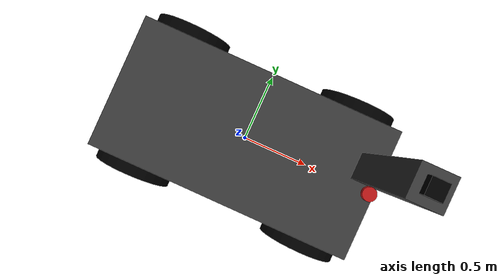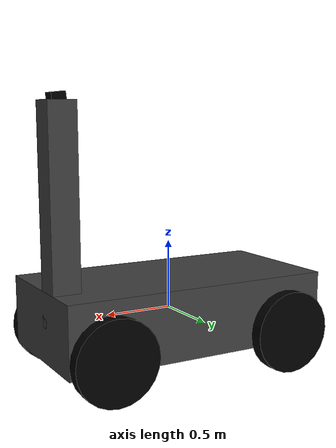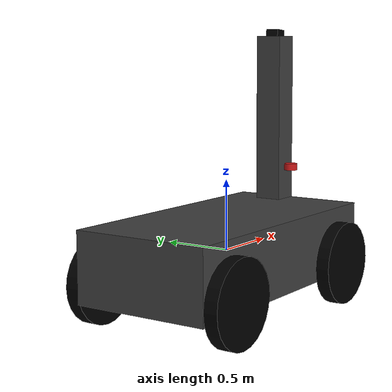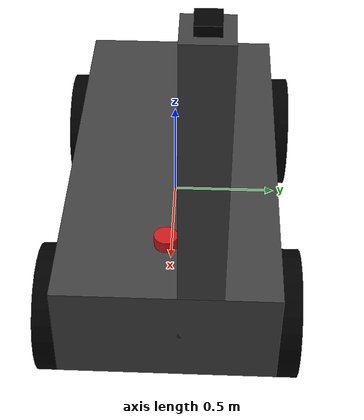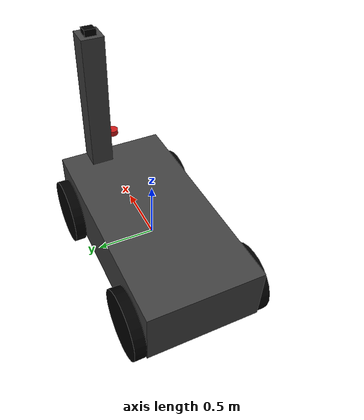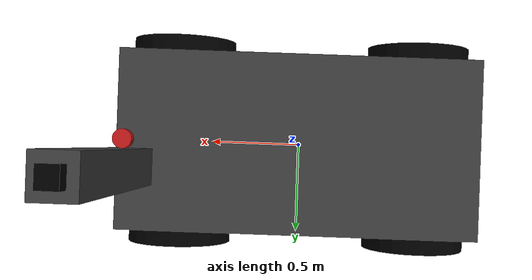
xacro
<?xml version="1.0"?>

<robot name="ackermann_steering_vehicle" xmlns:xacro="http://www.ros.org/wiki/xacro">

  <xacro:arg name="body_length" default="2.0" />
  <xacro:arg name="body_width" default="1.0" />
  <xacro:arg name="body_height" default="0.5" />
  <xacro:arg name="body_density" default="1000.0" />
  <xacro:arg name="wheel_radius" default="0.3" />
  <xacro:arg name="wheel_width" default="0.1" />
  <xacro:arg name="wheel_density" default="1000.0" />
  <xacro:arg name="max_steering_angle" default="0.6108" />
  <xacro:arg name="max_steering_angular_velocity" default="1.570796" />
  <xacro:arg name="max_steering_effort" default="1.0" />
  <xacro:arg name="max_velocity" default="1.0" />
  <xacro:arg name="max_effort" default="10.0" />
  <xacro:arg name="camera_box_size" default="0.1" />
  <xacro:arg name="camera_stick_size" default="0.2" />
  <xacro:arg name="camera_height" default="1.5" />
  <xacro:arg name="camera_pitch" default="0.1" />
  <xacro:arg name="camera_fov" default="90" />
  <xacro:arg name="camera_fps" default="30" />
  <xacro:arg name="image_width" default="640" />
  <xacro:arg name="image_height" default="480" />

  <xacro:property name="PI" value="3.14159265"/>

  <xacro:property name="body_length" value="$(arg body_length)"/>
  <xacro:property name="body_width" value="$(arg body_width)"/>
  <xacro:property name="body_height" value="$(arg body_height)"/>
  <xacro:property name="body_density" value="$(arg body_density)"/>
  <xacro:property name="wheel_radius" value="$(arg wheel_radius)"/>
  <xacro:property name="wheel_width" value="$(arg wheel_width)"/>
  <xacro:property name="wheel_density" value="$(arg wheel_density)"/>
  <xacro:property name="max_steering_angle" value="$(arg max_steering_angle)"/>
  <xacro:property name="max_steering_angular_velocity" value="$(arg max_steering_angular_velocity)"/>
  <xacro:property name="max_steering_effort" value="$(arg max_steering_effort)"/>
  <xacro:property name="max_velocity" value="$(arg max_velocity)"/>
  <xacro:property name="max_effort" value="$(arg max_effort)"/>
  <xacro:property name="camera_box_size" value="$(arg camera_box_size)"/>
  <xacro:property name="camera_stick_size" value="$(arg camera_stick_size)"/>
  <xacro:property name="camera_height" value="$(arg camera_height)"/>
  <xacro:property name="camera_pitch" value="$(arg camera_pitch)"/>
  <xacro:property name="camera_fov" value="$(arg camera_fov)"/>
  <xacro:property name="camera_fps" value="$(arg camera_fps)"/>
  <xacro:property name="image_width" value="$(arg image_width)"/>
  <xacro:property name="image_height" value="$(arg image_height)"/>

  <xacro:property name="body_mass" value="${body_density * body_length * body_height * body_width}"/>
  <xacro:property name="body_inertia_x" value="${1.0/12.0 * body_mass * (body_height*body_height + body_width*body_width)}"/>
  <xacro:property name="body_inertia_y" value="${1.0/12.0 * body_mass * (body_length*body_length + body_height*body_height)}"/>
  <xacro:property name="body_inertia_z" value="${1.0/12.0 * body_mass * (body_length*body_length + body_width*body_width)}"/>

  <xacro:property name="wheel_separation" value="${body_width + wheel_width}"/>
  <xacro:property name="wheel_offset" value="${body_length/2 - wheel_radius}"/>
  <xacro:property name="wheel_base" value="${2.0 * wheel_offset + 2.0 * wheel_radius}"/>

  <xacro:property name="wheel_mass" value="${wheel_density * PI * wheel_radius * wheel_radius * wheel_width}"/>
  <xacro:property name="wheel_inertia_x" value="${1.0/12.0 * wheel_mass * (3*wheel_radius*wheel_radius + wheel_width*wheel_width)}"/>
  <xacro:property name="wheel_inertia_y" value="${1.0/12.0 * wheel_mass * (3*wheel_radius*wheel_radius + wheel_width*wheel_width)}"/>
  <xacro:property name="wheel_inertia_z" value="${1.0/2.0 * wheel_mass * wheel_radius * wheel_radius}"/>
  <xacro:property name="max_wheel_angular_velocity" value="${max_velocity / wheel_radius}"/>

  <link name="body_link">
    <visual>
      <origin xyz="0.0 0.0 0.0" rpy="0.0 0.0 0.0"/>
      <geometry>
        <box size="${body_length} ${body_width} ${body_height}"/>
      </geometry>
      <material name="body_material">
        <color rgba="0.25 0.25 0.25 1.0"/>
      </material>
    </visual>
    <collision>
      <origin xyz="0.0 0.0 0.0" rpy="0.0 0.0 0.0"/>
      <geometry>
        <box size="${body_length} ${body_width} ${body_height}"/>
      </geometry>
    </collision>
    <inertial>
      <mass value="${body_mass}"/>
      <inertia ixx="${body_inertia_x}" ixy="0.0" ixz="0.0" iyy="${body_inertia_y}" iyz="0" izz="${body_inertia_z}"/>
      <origin xyz="0 0 0" rpy="0 0 0"/>
    </inertial>
  </link>

  <link name="front_left_wheel_link">
    <visual>
      <origin xyz="0.0 0.0 0.0" rpy="1.570795 0.0 0.0"/>
      <geometry>
        <cylinder radius="${wheel_radius}" length="${wheel_width}"/>
      </geometry>
      <material name="wheel_material">
        <color rgba="0.0 0.0 0.0 1.0"/>
      </material>
    </visual>
    <collision>
      <origin xyz="0.0 0.0 0.0" rpy="1.570795 0.0 0.0"/>
      <geometry>
        <cylinder radius="${wheel_radius}" length="${wheel_width}"/>
      </geometry>
    </collision>
    <inertial>
      <mass value="${wheel_mass}"/>
      <inertia ixx="${wheel_inertia_x}" ixy="0.0" ixz="0.0" iyy="${wheel_inertia_y}" iyz="0" izz="${wheel_inertia_z}"/>
      <origin xyz="0.0 0.0 0.0" rpy="1.570795 0.0 0.0"/>
    </inertial>
  </link>

    <link name="front_left_steering_link">
    <visual>
      <origin xyz="0.0 0.0 0.0" rpy="1.570795 0.0 0.0"/>
      <geometry>
        <cylinder length="0.001" radius="0.01"/>
      </geometry>
      <material name="wheel_material">
        <color rgba="0.0 0.0 0.0 1.0"/>
      </material>
    </visual>
    <collision>
      <origin xyz="0.0 0.0 0.0" rpy="1.570795 0.0 0.0"/>
      <geometry>
        <cylinder length="0.001" radius="0.01"/>
      </geometry>
    </collision>
    <inertial>
      <mass value="0.01"/>
      <inertia ixx="1e-4" ixy="0" ixz="0" iyy="1e-4" iyz="0" izz="1e-4"/>
      <origin xyz="0.0 0.0 0.0" rpy="1.570795 0.0 0.0"/>
    </inertial>
  </link>

  <link name="front_right_wheel_link">
    <visual>
      <origin xyz="0.0 0.0 0.0" rpy="1.570795 0.0 0.0"/>
      <geometry>
        <cylinder radius="${wheel_radius}" length="${wheel_width}"/>
      </geometry>
      <material name="wheel_material">
        <color rgba="0.0 0.0 0.0 1.0"/>
      </material>
    </visual>
    <collision>
      <origin xyz="0.0 0.0 0.0" rpy="1.570795 0.0 0.0"/>
      <geometry>
        <cylinder radius="${wheel_radius}" length="${wheel_width}"/>
      </geometry>
    </collision>
    <inertial>
      <mass value="${wheel_mass}"/>
      <inertia ixx="${wheel_inertia_x}" ixy="0.0" ixz="0.0" iyy="${wheel_inertia_y}" iyz="0" izz="${wheel_inertia_z}"/>
      <origin xyz="0.0 0.0 0.0" rpy="1.570795 0.0 0.0"/>
    </inertial>
  </link>

  <link name="front_right_steering_link">
    <visual>
      <origin xyz="0.0 0.0 0.0" rpy="1.570795 0.0 0.0"/>
      <geometry>
        <cylinder length="0.001" radius="0.01"/>
      </geometry>
      <material name="wheel_material">
        <color rgba="0.0 0.0 0.0 1.0"/>
      </material>
    </visual>
    <collision>
      <origin xyz="0.0 0.0 0.0" rpy="1.570795 0.0 0.0"/>
      <geometry>
        <cylinder length="0.001" radius="0.01"/>
      </geometry>
    </collision>
    <inertial>
      <mass value="0.01"/>
      <inertia ixx="1e-4" ixy="0" ixz="0" iyy="1e-4" iyz="0" izz="1e-4"/>
      <origin xyz="0.0 0.0 0.0" rpy="1.570795 0.0 0.0"/>
    </inertial>
  </link>

  <link name="rear_left_wheel_link">
    <visual>
      <origin xyz="0.0 0.0 0.0" rpy="1.570795 0.0 0.0"/>
      <geometry>
        <cylinder radius="${wheel_radius}" length="${wheel_width}"/>
      </geometry>
      <material name="wheel_material">
        <color rgba="0.0 0.0 0.0 1.0"/>
      </material>
    </visual>
    <collision>
      <origin xyz="0.0 0.0 0.0" rpy="1.570795 0.0 0.0"/>
      <geometry>
        <cylinder radius="${wheel_radius}" length="${wheel_width}"/>
      </geometry>
    </collision>
    <inertial>
      <mass value="${wheel_mass}"/>
      <inertia ixx="${wheel_inertia_x}" ixy="0.0" ixz="0.0" iyy="${wheel_inertia_y}" iyz="0" izz="${wheel_inertia_z}"/>
      <origin xyz="0.0 0.0 0.0" rpy="1.570795 0.0 0.0"/>
    </inertial>
  </link>

  <link name="rear_right_wheel_link">
    <visual>
      <origin xyz="0.0 0.0 0.0" rpy="1.570795 0.0 0.0"/>
      <geometry>
        <cylinder radius="${wheel_radius}" length="${wheel_width}"/>
      </geometry>
      <material name="wheel_material">
        <color rgba="0.0 0.0 0.0 1.0"/>
      </material>
    </visual>
    <collision>
      <origin xyz="0.0 0.0 0.0" rpy="1.570795 0.0 0.0"/>
      <geometry>
        <cylinder radius="${wheel_radius}" length="${wheel_width}"/>
      </geometry>
    </collision>
    <inertial>
      <mass value="${wheel_mass}"/>
      <inertia ixx="${wheel_inertia_x}" ixy="0.0" ixz="0.0" iyy="${wheel_inertia_y}" iyz="0" izz="${wheel_inertia_z}"/>
      <origin xyz="0.0 0.0 0.0" rpy="1.570795 0.0 0.0"/>
    </inertial>
  </link>

  <link name="camera_stick_link">
    <collision>
      <origin xyz="0 0 0" rpy="0 0 0"/>
      <geometry>
        <box size="${camera_stick_size} ${camera_stick_size} ${camera_height}"/>
      </geometry>
    </collision>

    <visual>
      <origin xyz="0 0 0" rpy="0 0 0"/>
      <geometry>
        <box size="${camera_stick_size} ${camera_stick_size} ${camera_height}"/>
      </geometry>

      <material name="camera_stick_material">
        <color rgba="0.25 0.25 0.25 1.0"/>
      </material>
    </visual>

    <inertial>
      <mass value="1e-5" />
      <origin xyz="0 0 0" rpy="0 0 0"/>
      <inertia ixx="1e-6" ixy="0" ixz="0" iyy="1e-6" iyz="0" izz="1e-6" />
    </inertial>
  </link>

  <link name="lidar_link">
    <visual>
      <origin xyz="0 0 0" rpy="0 0 0"/>
      <geometry>
        <cylinder radius="0.05" length="0.05"/>
      </geometry>
      <material name="lidar_material">
        <color rgba="0.8 0.1 0.1 1.0"/>
      </material>
    </visual>

    <collision>
      <origin xyz="0 0 0" rpy="0 0 0"/>
      <geometry>
        <cylinder radius="0.05" length="0.05"/>
      </geometry>
    </collision>

    <inertial>
      <mass value="0.1"/>
      <origin xyz="0 0 0" rpy="0 0 0"/>
      <inertia ixx="1e-4" ixy="0" ixz="0"
              iyy="1e-4" iyz="0"
              izz="1e-4"/>
    </inertial>
</link>

  <link name="camera_link">
    <collision>
      <origin xyz="0 0 0" rpy="0 0 0"/>
      <geometry>
        <box size="${camera_box_size} ${camera_box_size} ${camera_box_size}"/>
      </geometry>
    </collision>

    <visual>
      <origin xyz="0 0 0" rpy="0 0 0"/>
      <geometry>
        <box size="${camera_box_size} ${camera_box_size} ${camera_box_size}"/>
      </geometry>

      <material name="camera_material">
        <color rgba="0.0 0.0 0.0 1.0"/>
      </material>
    </visual>

    <inertial>
      <mass value="1e-5" />
      <origin xyz="0 0 0" rpy="0 0 0"/>
      <inertia ixx="1e-6" ixy="0" ixz="0" iyy="1e-6" iyz="0" izz="1e-6" />
    </inertial>
  </link>

  <joint name="front_left_steering_joint" type="revolute">
    <origin xyz="${wheel_offset} ${wheel_separation/2} -${wheel_radius/2}" rpy="0 0 0"/>
    <parent link="body_link"/>
    <child link="front_left_steering_link"/>
    <axis xyz="0 0 1"/>
    <limit effort="${max_steering_effort}" lower="${-max_steering_angle}" upper="${max_steering_angle}" velocity="${max_steering_angular_velocity}"/>
    <dynamics damping="0.1" friction="0.1"/>
  </joint>

  <joint name="front_left_wheel_joint" type="continuous">
    <origin xyz="0 0 0" rpy="0 0 0"/>
    <parent link="front_left_steering_link"/>
    <child link="front_left_wheel_link"/>
    <axis xyz="0 1 0"/>
    <limit effort="${max_effort}" velocity="${max_wheel_angular_velocity}"/>
    <dynamics damping="0.1" friction="0.1"/>
  </joint>

  <joint name="front_right_steering_joint" type="revolute">
    <origin xyz="${wheel_offset} ${-wheel_separation/2} -${wheel_radius/2}" rpy="0 0 0"/>
    <parent link="body_link"/>
    <child link="front_right_steering_link"/>
    <axis xyz="0 0 1"/>
    <limit effort="${max_steering_effort}" lower="${-max_steering_angle}" upper="${max_steering_angle}" velocity="${max_steering_angular_velocity}"/>
    <dynamics damping="0.1" friction="0.1"/>
  </joint>

  <joint name="front_right_wheel_joint" type="continuous">
    <origin xyz="0 0 0" rpy="0 0 0"/>
    <parent link="front_right_steering_link"/>
    <child link="front_right_wheel_link"/>
    <axis xyz="0 1 0"/>
    <limit effort="${max_effort}" velocity="${max_wheel_angular_velocity}"/>
    <dynamics damping="0.1" friction="0.1"/>
  </joint>

  <joint name="rear_left_wheel_joint" type="continuous">
    <origin xyz="-${wheel_offset} ${wheel_separation/2} -${wheel_radius/2}" rpy="0 0 0"/>
    <parent link="body_link"/>
    <child link="rear_left_wheel_link"/>
    <axis xyz="0 1 0"/>
    <limit effort="${max_effort}" velocity="${max_wheel_angular_velocity}"/>
    <dynamics damping="0.1" friction="0.1"/>
  </joint>

  <joint name="rear_right_wheel_joint" type="continuous">
    <origin xyz="-${wheel_offset} ${-wheel_separation/2} -${wheel_radius/2}" rpy="0 0 0"/>
    <parent link="body_link"/>
    <child link="rear_right_wheel_link"/>
    <axis xyz="0 1 0"/>
    <limit effort="${max_effort}" velocity="${max_wheel_angular_velocity}"/>
    <dynamics damping="0.1" friction="0.1"/>
  </joint>

  <joint name="lidar_joint" type="fixed">
    <origin
      xyz="${body_length/2 - 0.1} 0 ${body_height}"
      rpy="0 0 0"/>
    <parent link="body_link"/>
    <child link="lidar_link"/>
  </joint>

  <joint name="camera_stick_joint" type="fixed">
    <origin xyz="${body_length/2 - camera_stick_size/2} ${camera_box_size/2 + camera_stick_size/2} ${camera_height/2}" rpy="0.0 0.0 0.0"/>
    <parent link="body_link"/>
    <child link="camera_stick_link"/>
  </joint>

  <joint name="camera_joint" type="fixed">
    <origin xyz="0.0 0.0 ${camera_height/2}" rpy="0 ${camera_pitch} 0"/>
    <parent link="camera_stick_link"/>
    <child link="camera_link"/>
  </joint>

  <gazebo reference="body_link">
    <mu1>1.0</mu1>
    <mu2>1.0</mu2>
  </gazebo>

  <gazebo reference="front_right_wheel_link">
    <mu1>1.0</mu1>
    <mu2>1.0</mu2>
  </gazebo>

  <gazebo reference="front_left_wheel_link">
    <mu1>1.0</mu1>
    <mu2>1.0</mu2>
  </gazebo>

  <gazebo reference="rear_right_wheel_link">
    <mu1>1.0</mu1>
    <mu2>1.0</mu2>
  </gazebo>

  <gazebo reference="rear_left_wheel_link">
    <mu1>1.0</mu1>
    <mu2>1.0</mu2>
  </gazebo>

  <gazebo>
    <plugin filename="libignition-gazebo-ackermann-steering-system.so"
            name="ignition::gazebo::systems::AckermannSteering">
        <topic>/cmd_vel</topic>
        <!-- 后轮驱动 -->
        <left_joint>rear_left_wheel_joint</left_joint>
        <right_joint>rear_right_wheel_joint</right_joint>
        <!-- 前轮转向 -->
        <left_steering_joint>front_left_steering_joint</left_steering_joint>
        <right_steering_joint>front_right_steering_joint</right_steering_joint>

        <kingpin_width>${wheel_separation}</kingpin_width>
        <steering_limit>${max_steering_angle}</steering_limit>
        <wheel_base>${wheel_base}</wheel_base>
        <wheel_radius>${wheel_radius}</wheel_radius>
        <min_velocity>-${max_velocity}</min_velocity>
        <max_velocity>${max_velocity}</max_velocity>
        <min_acceleration>-1.5</min_acceleration>
        <max_acceleration>1.5</max_acceleration>

        <!-- ✅ 启用 AckermannSteering 插件的里程计（它知道阿克曼运动学） -->
        <odom_publish_frequency>60</odom_publish_frequency>
        <odom_topic>/model/ackermann_steering_vehicle/odometry</odom_topic>
        <frame_id>odom</frame_id>
        <child_frame_id>body_link</child_frame_id>
    </plugin>

    <plugin name="ignition::gazebo::systems::JointStatePublisher"
            filename="libignition-gazebo-joint-state-publisher-system">
        <topic>/joint_states</topic>
        <update_rate>60</update_rate>
    </plugin>

    <!-- ✅ 使用后轮差速里程计（基于实际轮子旋转，更准确） -->
    <plugin filename="libignition-gazebo-odometry-publisher-system.so"
            name="ignition::gazebo::systems::OdometryPublisher">
        <odom_frame>odom</odom_frame>
        <robot_base_frame>body_link</robot_base_frame>
        <odom_topic>/model/ackermann_steering_vehicle/odometry_wheels</odom_topic>
        <tf_topic>/tf</tf_topic>
        <odom_publish_frequency>60</odom_publish_frequency>
        <dimensions>2</dimensions>
    </plugin>

    <plugin filename="libignition-gazebo-sensors-system.so"
            name="ignition::gazebo::systems::Sensors">
        <render_engine>ogre2</render_engine>
    </plugin>

    <!-- ✅ 发布模型的 ground truth 位姿（绝对准确，无漂移） -->
    <plugin filename="libignition-gazebo-pose-publisher-system.so"
            name="ignition::gazebo::systems::PosePublisher">
        <publish_link_pose>false</publish_link_pose>
        <publish_collision_pose>false</publish_collision_pose>
        <publish_visual_pose>false</publish_visual_pose>
        <publish_nested_model_pose>false</publish_nested_model_pose>
        <update_frequency>60</update_frequency>
    </plugin>
  </gazebo>

  <gazebo reference="lidar_link">
    <sensor name="lidar_sensor" type="gpu_ray">
      <pose>0 0 0 0 0 0</pose>
      <visualize>true</visualize>
      <update_rate>10</update_rate>
      <ray>
        <scan>
          <horizontal>
            <samples>720</samples>
            <resolution>1</resolution>
            <min_angle>-3.14159265</min_angle>
            <max_angle>3.14159265</max_angle>
          </horizontal>
        </scan>

        <range>
          <min>0.12</min>
          <max>20.0</max>
          <resolution>0.01</resolution>
        </range>

        <noise>
          <type>gaussian</type>
          <mean>0.0</mean>
          <stddev>0.01</stddev>
        </noise>
      </ray>
      <gz_frame_id>lidar_link</gz_frame_id>
      <topic>scan</topic>
    </sensor>
  </gazebo>

  <gazebo reference="camera_link">
    <sensor type="camera" name="vehicle_front_camera">
      <update_rate>${camera_fps}</update_rate>
      <visualize>true</visualize>
      <topic>camera</topic>

      <camera name="head">
        <horizontal_fov>${camera_fov}</horizontal_fov>
        <image>
          <width>${image_width}</width>
          <height>${image_height}</height>
          <format>R8G8B8</format>
        </image>
        <clip>
          <near>0.02</near>
          <far>300</far>
        </clip>
        <noise>
          <type>gaussian</type>
          <mean>0.0</mean>
          <stddev>0.007</stddev>
        </noise>
      </camera>
      <gz_frame_id>camera_link</gz_frame_id>
    </sensor>
    <plugin name="gazebo_ros_camera" filename="libgazebo_ros_camera.so">
      <ros_topic_name>/camera/image_raw</ros_topic_name>
      <frame_name>camera_link</frame_name>
      <update_rate>${camera_fps}</update_rate>
    </plugin>
  </gazebo>
</robot>
